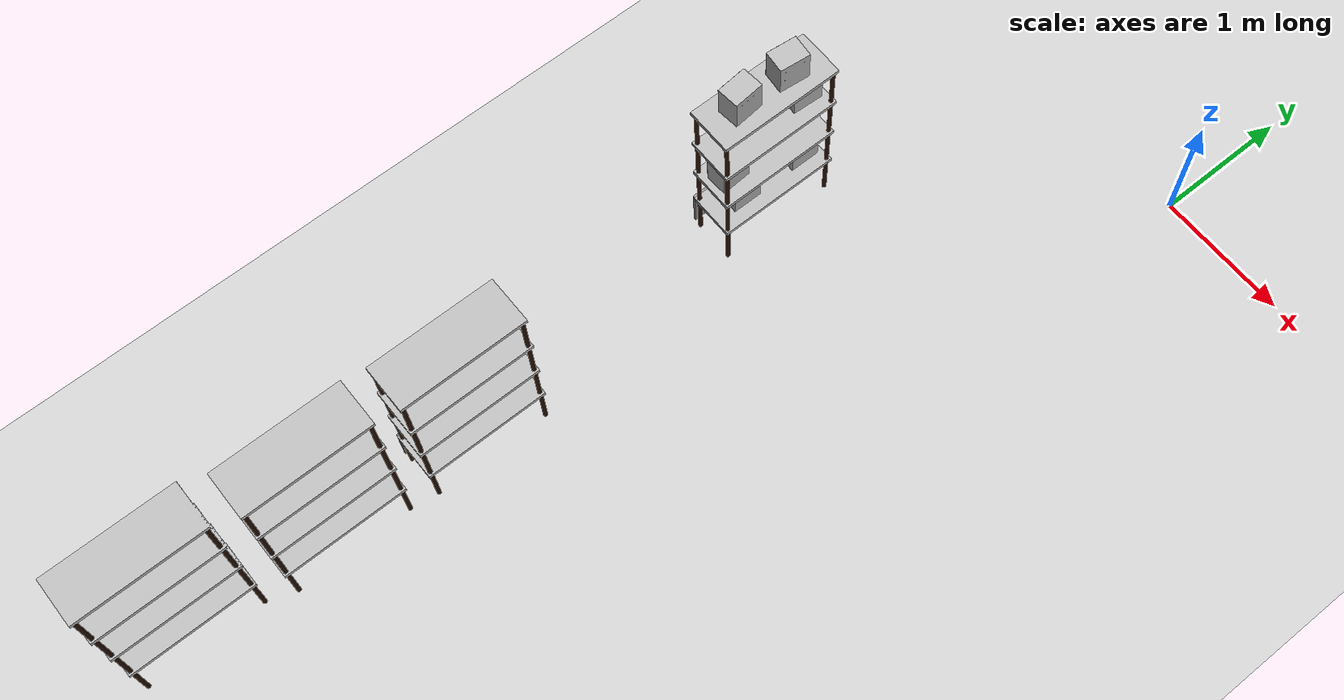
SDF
<sdf version="1.7">
 <world name="default">
  <model name="ground_plane">
   <static>1</static>
   <link name="link">
    <collision name="collision">
     <geometry><plane><normal>0 0 1</normal><size>100 100</size></plane></geometry>
     <surface><friction><ode><mu>100</mu><mu2>50</mu2></ode></friction></surface>
    </collision>
    <visual name="visual">
     <cast_shadows>0</cast_shadows>
     <geometry><plane><normal>0 0 1</normal><size>100 100</size></plane></geometry>
     <material>
      <script><uri>file://media/materials/scripts/gazebo.material</uri><name>Gazebo/Grey</name></script>
     </material>
    </visual>
   </link>
  </model>
  <model name="rack">
   <link name="link">
    <inertial>
     <mass>0.1</mass>
     <inertia><ixx>0.01857</ixx><ixy>0</ixy><ixz>0</ixz><iyy>0.015598</iyy><iyz>0</iyz><izz>0.00305</izz></inertia>
    </inertial>
    <visual name="visual1">
     <cast_shadows>0</cast_shadows>
     <geometry><mesh><uri>model://rack/meshes/rack.dae</uri></mesh></geometry>
     <material>
      <shader type="pixel"><normal_map>__default__</normal_map></shader>
      <emissive>0 0 0 1</emissive>
     </material>
    </visual>
    <visual name="visual_2">
     <cast_shadows>0</cast_shadows>
     <geometry><box><size>0.02 0.9 0.31</size></box></geometry>
     <material>
      <lighting>1</lighting>
      <script><uri>file://media/materials/scripts/gazebo.material</uri><name>Gazebo/Grey</name></script>
      <shader type="pixel"><normal_map>__default__</normal_map></shader>
      <ambient>0.3 0.3 0.3 1</ambient>
      <diffuse>0.7 0.7 0.7 1</diffuse>
      <specular>0.01 0.01 0.01 1</specular>
      <emissive>0 0 0 1</emissive>
     </material>
     <pose>-0.185 0 0.22 0 -0 0</pose>
    </visual>
    <collision name="collision_7">
     <pose>0 0 0.36 0 1.57 1.57</pose>
     <geometry><box><size>0.05 0.35 0.91</size></box></geometry>
     <surface>
      <friction>
       <ode><mu>1</mu><mu2>1</mu2><fdir1>0 0 0</fdir1><slip1>0</slip1><slip2>0</slip2></ode>
       <torsional>
        <coefficient>1</coefficient>
        <patch_radius>0</patch_radius>
        <surface_radius>0</surface_radius>
        <use_patch_radius>1</use_patch_radius>
        <ode><slip>0</slip></ode>
       </torsional>
      </friction>
      <bounce><restitution_coefficient>0</restitution_coefficient><threshold>1e+06</threshold></bounce>
      <contact>
       <collide_without_contact>0</collide_without_contact>
       <collide_without_contact_bitmask>1</collide_without_contact_bitmask>
       <collide_bitmask>1</collide_bitmask>
       <ode>
        <soft_cfm>0</soft_cfm>
        <soft_erp>0.2</soft_erp>
        <kp>1e+15</kp>
        <kd>1e+13</kd>
        <max_vel>0.01</max_vel>
        <min_depth>0</min_depth>
       </ode>
       <bullet>
        <split_impulse>1</split_impulse>
        <split_impulse_penetration_threshold>-0.01</split_impulse_penetration_threshold>
        <soft_cfm>0</soft_cfm>
        <soft_erp>0.2</soft_erp>
        <kp>1e+13</kp>
        <kd>1</kd>
       </bullet>
      </contact>
     </surface>
    </collision>
    <collision name="collision_6">
     <pose>0 0 0.725 0 1.57 1.57</pose>
     <geometry><box><size>0.05 0.35 0.91</size></box></geometry>
     <surface>
      <friction>
       <ode><mu>1</mu><mu2>1</mu2><fdir1>0 0 0</fdir1><slip1>0</slip1><slip2>0</slip2></ode>
       <torsional>
        <coefficient>1</coefficient>
        <patch_radius>0</patch_radius>
        <surface_radius>0</surface_radius>
        <use_patch_radius>1</use_patch_radius>
        <ode><slip>0</slip></ode>
       </torsional>
      </friction>
      <bounce><restitution_coefficient>0</restitution_coefficient><threshold>1e+06</threshold></bounce>
      <contact>
       <collide_without_contact>0</collide_without_contact>
       <collide_without_contact_bitmask>1</collide_without_contact_bitmask>
       <collide_bitmask>1</collide_bitmask>
       <ode>
        <soft_cfm>0</soft_cfm>
        <soft_erp>0.2</soft_erp>
        <kp>1e+15</kp>
        <kd>1e+13</kd>
        <max_vel>0.01</max_vel>
        <min_depth>0</min_depth>
       </ode>
       <bullet>
        <split_impulse>1</split_impulse>
        <split_impulse_penetration_threshold>-0.01</split_impulse_penetration_threshold>
        <soft_cfm>0</soft_cfm>
        <soft_erp>0.2</soft_erp>
        <kp>1e+13</kp>
        <kd>1</kd>
       </bullet>
      </contact>
     </surface>
    </collision>
    <collision name="collision_5">
     <pose>0 0 1.09 0 1.57 1.57</pose>
     <geometry><box><size>0.05 0.35 0.91</size></box></geometry>
     <surface>
      <friction>
       <ode><mu>1</mu><mu2>1</mu2><fdir1>0 0 0</fdir1><slip1>0</slip1><slip2>0</slip2></ode>
       <torsional>
        <coefficient>1</coefficient>
        <patch_radius>0</patch_radius>
        <surface_radius>0</surface_radius>
        <use_patch_radius>1</use_patch_radius>
        <ode><slip>0</slip></ode>
       </torsional>
      </friction>
      <bounce><restitution_coefficient>0</restitution_coefficient><threshold>1e+06</threshold></bounce>
      <contact>
       <collide_without_contact>0</collide_without_contact>
       <collide_without_contact_bitmask>1</collide_without_contact_bitmask>
       <collide_bitmask>1</collide_bitmask>
       <ode>
        <soft_cfm>0</soft_cfm>
        <soft_erp>0.2</soft_erp>
        <kp>1e+15</kp>
        <kd>1e+13</kd>
        <max_vel>0.01</max_vel>
        <min_depth>0</min_depth>
       </ode>
       <bullet>
        <split_impulse>1</split_impulse>
        <split_impulse_penetration_threshold>-0.01</split_impulse_penetration_threshold>
        <soft_cfm>0</soft_cfm>
        <soft_erp>0.2</soft_erp>
        <kp>1e+13</kp>
        <kd>1</kd>
       </bullet>
      </contact>
     </surface>
    </collision>
    <collision name="collision_3">
     <pose>0 0 1.455 0 1.57 1.57</pose>
     <geometry><box><size>0.05 0.35 0.91</size></box></geometry>
     <surface>
      <friction>
       <ode><mu>1</mu><mu2>1</mu2><fdir1>0 0 0</fdir1><slip1>0</slip1><slip2>0</slip2></ode>
       <torsional>
        <coefficient>1</coefficient>
        <patch_radius>0</patch_radius>
        <surface_radius>0</surface_radius>
        <use_patch_radius>1</use_patch_radius>
        <ode><slip>0</slip></ode>
       </torsional>
      </friction>
      <bounce><restitution_coefficient>0</restitution_coefficient><threshold>1e+06</threshold></bounce>
      <contact>
       <collide_without_contact>0</collide_without_contact>
       <collide_without_contact_bitmask>1</collide_without_contact_bitmask>
       <collide_bitmask>1</collide_bitmask>
       <ode>
        <soft_cfm>0</soft_cfm>
        <soft_erp>0.2</soft_erp>
        <kp>1e+15</kp>
        <kd>1e+13</kd>
        <max_vel>0.01</max_vel>
        <min_depth>0</min_depth>
       </ode>
       <bullet>
        <split_impulse>1</split_impulse>
        <split_impulse_penetration_threshold>-0.01</split_impulse_penetration_threshold>
        <soft_cfm>0</soft_cfm>
        <soft_erp>0.2</soft_erp>
        <kp>1e+13</kp>
        <kd>1</kd>
       </bullet>
      </contact>
     </surface>
    </collision>
    <collision name="collision_1">
     <pose>0 0.43 0.73 0 -0 1.57</pose>
     <geometry><box><size>0.05 0.36 1.46</size></box></geometry>
     <surface>
      <friction>
       <ode><mu>1</mu><mu2>1</mu2><fdir1>0 0 0</fdir1><slip1>0</slip1><slip2>0</slip2></ode>
       <torsional>
        <coefficient>1</coefficient>
        <patch_radius>0</patch_radius>
        <surface_radius>0</surface_radius>
        <use_patch_radius>1</use_patch_radius>
        <ode><slip>0</slip></ode>
       </torsional>
      </friction>
      <bounce><restitution_coefficient>0</restitution_coefficient><threshold>1e+06</threshold></bounce>
      <contact>
       <collide_without_contact>0</collide_without_contact>
       <collide_without_contact_bitmask>1</collide_without_contact_bitmask>
       <collide_bitmask>1</collide_bitmask>
       <ode>
        <soft_cfm>0</soft_cfm>
        <soft_erp>0.2</soft_erp>
        <kp>1e+15</kp>
        <kd>1e+13</kd>
        <max_vel>0.01</max_vel>
        <min_depth>0</min_depth>
       </ode>
       <bullet>
        <split_impulse>1</split_impulse>
        <split_impulse_penetration_threshold>-0.01</split_impulse_penetration_threshold>
        <soft_cfm>0</soft_cfm>
        <soft_erp>0.2</soft_erp>
        <kp>1e+13</kp>
        <kd>1</kd>
       </bullet>
      </contact>
     </surface>
    </collision>
    <collision name="collision_2">
     <pose>0 -0.43 0.73 0 -0 1.57</pose>
     <geometry><box><size>0.05 0.36 1.46</size></box></geometry>
     <surface>
      <friction>
       <ode><mu>1</mu><mu2>1</mu2><fdir1>0 0 0</fdir1><slip1>0</slip1><slip2>0</slip2></ode>
       <torsional>
        <coefficient>1</coefficient>
        <patch_radius>0</patch_radius>
        <surface_radius>0</surface_radius>
        <use_patch_radius>1</use_patch_radius>
        <ode><slip>0</slip></ode>
       </torsional>
      </friction>
      <bounce><restitution_coefficient>0</restitution_coefficient><threshold>1e+06</threshold></bounce>
      <contact>
       <collide_without_contact>0</collide_without_contact>
       <collide_without_contact_bitmask>1</collide_without_contact_bitmask>
       <collide_bitmask>1</collide_bitmask>
       <ode>
        <soft_cfm>0</soft_cfm>
        <soft_erp>0.2</soft_erp>
        <kp>1e+15</kp>
        <kd>1e+13</kd>
        <max_vel>0.01</max_vel>
        <min_depth>0</min_depth>
       </ode>
       <bullet>
        <split_impulse>1</split_impulse>
        <split_impulse_penetration_threshold>-0.01</split_impulse_penetration_threshold>
        <soft_cfm>0</soft_cfm>
        <soft_erp>0.2</soft_erp>
        <kp>1e+13</kp>
        <kd>1</kd>
       </bullet>
      </contact>
     </surface>
    </collision>
    <collision name="collision">
     <pose>-0.185 0 0.22 0 -0 0</pose>
     <geometry><box><size>0.02 0.9 0.31</size></box></geometry>
     <surface>
      <friction>
       <ode><mu>1</mu><mu2>1</mu2><fdir1>0 0 0</fdir1><slip1>0</slip1><slip2>0</slip2></ode>
       <torsional>
        <coefficient>1</coefficient>
        <patch_radius>0</patch_radius>
        <surface_radius>0</surface_radius>
        <use_patch_radius>1</use_patch_radius>
        <ode><slip>0</slip></ode>
       </torsional>
      </friction>
      <bounce><restitution_coefficient>0</restitution_coefficient><threshold>1e+06</threshold></bounce>
      <contact>
       <collide_without_contact>0</collide_without_contact>
       <collide_without_contact_bitmask>1</collide_without_contact_bitmask>
       <collide_bitmask>1</collide_bitmask>
       <ode>
        <soft_cfm>0</soft_cfm>
        <soft_erp>0.2</soft_erp>
        <kp>1e+15</kp>
        <kd>1e+13</kd>
        <max_vel>0.01</max_vel>
        <min_depth>0</min_depth>
       </ode>
       <bullet>
        <split_impulse>1</split_impulse>
        <split_impulse_penetration_threshold>-0.01</split_impulse_penetration_threshold>
        <soft_cfm>0</soft_cfm>
        <soft_erp>0.2</soft_erp>
        <kp>1e+13</kp>
        <kd>1</kd>
       </bullet>
      </contact>
     </surface>
    </collision>
   </link>
   <static>0</static>
   <pose>-1.73706 -6.85642 -0 0 -0 0</pose>
  </model>
  <model name="rack_0">
   <link name="link">
    <inertial>
     <mass>0.1</mass>
     <inertia><ixx>0.01857</ixx><ixy>0</ixy><ixz>0</ixz><iyy>0.015598</iyy><iyz>0</iyz><izz>0.00305</izz></inertia>
    </inertial>
    <visual name="visual1">
     <cast_shadows>0</cast_shadows>
     <geometry><mesh><uri>model://rack/meshes/rack.dae</uri></mesh></geometry>
     <material>
      <shader type="pixel"><normal_map>__default__</normal_map></shader>
      <emissive>0 0 0 1</emissive>
     </material>
    </visual>
    <visual name="visual_2">
     <cast_shadows>0</cast_shadows>
     <geometry><box><size>0.02 0.9 0.31</size></box></geometry>
     <material>
      <lighting>1</lighting>
      <script><uri>file://media/materials/scripts/gazebo.material</uri><name>Gazebo/Grey</name></script>
      <shader type="pixel"><normal_map>__default__</normal_map></shader>
      <ambient>0.3 0.3 0.3 1</ambient>
      <diffuse>0.7 0.7 0.7 1</diffuse>
      <specular>0.01 0.01 0.01 1</specular>
      <emissive>0 0 0 1</emissive>
     </material>
     <pose>-0.185 0 0.22 0 -0 0</pose>
    </visual>
    <collision name="collision_7">
     <pose>0 0 0.36 0 1.57 1.57</pose>
     <geometry><box><size>0.05 0.35 0.91</size></box></geometry>
     <surface>
      <friction>
       <ode><mu>1</mu><mu2>1</mu2><fdir1>0 0 0</fdir1><slip1>0</slip1><slip2>0</slip2></ode>
       <torsional>
        <coefficient>1</coefficient>
        <patch_radius>0</patch_radius>
        <surface_radius>0</surface_radius>
        <use_patch_radius>1</use_patch_radius>
        <ode><slip>0</slip></ode>
       </torsional>
      </friction>
      <bounce><restitution_coefficient>0</restitution_coefficient><threshold>1e+06</threshold></bounce>
      <contact>
       <collide_without_contact>0</collide_without_contact>
       <collide_without_contact_bitmask>1</collide_without_contact_bitmask>
       <collide_bitmask>1</collide_bitmask>
       <ode>
        <soft_cfm>0</soft_cfm>
        <soft_erp>0.2</soft_erp>
        <kp>1e+15</kp>
        <kd>1e+13</kd>
        <max_vel>0.01</max_vel>
        <min_depth>0</min_depth>
       </ode>
       <bullet>
        <split_impulse>1</split_impulse>
        <split_impulse_penetration_threshold>-0.01</split_impulse_penetration_threshold>
        <soft_cfm>0</soft_cfm>
        <soft_erp>0.2</soft_erp>
        <kp>1e+13</kp>
        <kd>1</kd>
       </bullet>
      </contact>
     </surface>
    </collision>
    <collision name="collision_6">
     <pose>0 0 0.725 0 1.57 1.57</pose>
     <geometry><box><size>0.05 0.35 0.91</size></box></geometry>
     <surface>
      <friction>
       <ode><mu>1</mu><mu2>1</mu2><fdir1>0 0 0</fdir1><slip1>0</slip1><slip2>0</slip2></ode>
       <torsional>
        <coefficient>1</coefficient>
        <patch_radius>0</patch_radius>
        <surface_radius>0</surface_radius>
        <use_patch_radius>1</use_patch_radius>
        <ode><slip>0</slip></ode>
       </torsional>
      </friction>
      <bounce><restitution_coefficient>0</restitution_coefficient><threshold>1e+06</threshold></bounce>
      <contact>
       <collide_without_contact>0</collide_without_contact>
       <collide_without_contact_bitmask>1</collide_without_contact_bitmask>
       <collide_bitmask>1</collide_bitmask>
       <ode>
        <soft_cfm>0</soft_cfm>
        <soft_erp>0.2</soft_erp>
        <kp>1e+15</kp>
        <kd>1e+13</kd>
        <max_vel>0.01</max_vel>
        <min_depth>0</min_depth>
       </ode>
       <bullet>
        <split_impulse>1</split_impulse>
        <split_impulse_penetration_threshold>-0.01</split_impulse_penetration_threshold>
        <soft_cfm>0</soft_cfm>
        <soft_erp>0.2</soft_erp>
        <kp>1e+13</kp>
        <kd>1</kd>
       </bullet>
      </contact>
     </surface>
    </collision>
    <collision name="collision_5">
     <pose>0 0 1.09 0 1.57 1.57</pose>
     <geometry><box><size>0.05 0.35 0.91</size></box></geometry>
     <surface>
      <friction>
       <ode><mu>1</mu><mu2>1</mu2><fdir1>0 0 0</fdir1><slip1>0</slip1><slip2>0</slip2></ode>
       <torsional>
        <coefficient>1</coefficient>
        <patch_radius>0</patch_radius>
        <surface_radius>0</surface_radius>
        <use_patch_radius>1</use_patch_radius>
        <ode><slip>0</slip></ode>
       </torsional>
      </friction>
      <bounce><restitution_coefficient>0</restitution_coefficient><threshold>1e+06</threshold></bounce>
      <contact>
       <collide_without_contact>0</collide_without_contact>
       <collide_without_contact_bitmask>1</collide_without_contact_bitmask>
       <collide_bitmask>1</collide_bitmask>
       <ode>
        <soft_cfm>0</soft_cfm>
        <soft_erp>0.2</soft_erp>
        <kp>1e+15</kp>
        <kd>1e+13</kd>
        <max_vel>0.01</max_vel>
        <min_depth>0</min_depth>
       </ode>
       <bullet>
        <split_impulse>1</split_impulse>
        <split_impulse_penetration_threshold>-0.01</split_impulse_penetration_threshold>
        <soft_cfm>0</soft_cfm>
        <soft_erp>0.2</soft_erp>
        <kp>1e+13</kp>
        <kd>1</kd>
       </bullet>
      </contact>
     </surface>
    </collision>
    <collision name="collision_3">
     <pose>0 0 1.455 0 1.57 1.57</pose>
     <geometry><box><size>0.05 0.35 0.91</size></box></geometry>
     <surface>
      <friction>
       <ode><mu>1</mu><mu2>1</mu2><fdir1>0 0 0</fdir1><slip1>0</slip1><slip2>0</slip2></ode>
       <torsional>
        <coefficient>1</coefficient>
        <patch_radius>0</patch_radius>
        <surface_radius>0</surface_radius>
        <use_patch_radius>1</use_patch_radius>
        <ode><slip>0</slip></ode>
       </torsional>
      </friction>
      <bounce><restitution_coefficient>0</restitution_coefficient><threshold>1e+06</threshold></bounce>
      <contact>
       <collide_without_contact>0</collide_without_contact>
       <collide_without_contact_bitmask>1</collide_without_contact_bitmask>
       <collide_bitmask>1</collide_bitmask>
       <ode>
        <soft_cfm>0</soft_cfm>
        <soft_erp>0.2</soft_erp>
        <kp>1e+15</kp>
        <kd>1e+13</kd>
        <max_vel>0.01</max_vel>
        <min_depth>0</min_depth>
       </ode>
       <bullet>
        <split_impulse>1</split_impulse>
        <split_impulse_penetration_threshold>-0.01</split_impulse_penetration_threshold>
        <soft_cfm>0</soft_cfm>
        <soft_erp>0.2</soft_erp>
        <kp>1e+13</kp>
        <kd>1</kd>
       </bullet>
      </contact>
     </surface>
    </collision>
    <collision name="collision_1">
     <pose>0 0.43 0.73 0 -0 1.57</pose>
     <geometry><box><size>0.05 0.36 1.46</size></box></geometry>
     <surface>
      <friction>
       <ode><mu>1</mu><mu2>1</mu2><fdir1>0 0 0</fdir1><slip1>0</slip1><slip2>0</slip2></ode>
       <torsional>
        <coefficient>1</coefficient>
        <patch_radius>0</patch_radius>
        <surface_radius>0</surface_radius>
        <use_patch_radius>1</use_patch_radius>
        <ode><slip>0</slip></ode>
       </torsional>
      </friction>
      <bounce><restitution_coefficient>0</restitution_coefficient><threshold>1e+06</threshold></bounce>
      <contact>
       <collide_without_contact>0</collide_without_contact>
       <collide_without_contact_bitmask>1</collide_without_contact_bitmask>
       <collide_bitmask>1</collide_bitmask>
       <ode>
        <soft_cfm>0</soft_cfm>
        <soft_erp>0.2</soft_erp>
        <kp>1e+15</kp>
        <kd>1e+13</kd>
        <max_vel>0.01</max_vel>
        <min_depth>0</min_depth>
       </ode>
       <bullet>
        <split_impulse>1</split_impulse>
        <split_impulse_penetration_threshold>-0.01</split_impulse_penetration_threshold>
        <soft_cfm>0</soft_cfm>
        <soft_erp>0.2</soft_erp>
        <kp>1e+13</kp>
        <kd>1</kd>
       </bullet>
      </contact>
     </surface>
    </collision>
    <collision name="collision_2">
     <pose>0 -0.43 0.73 0 -0 1.57</pose>
     <geometry><box><size>0.05 0.36 1.46</size></box></geometry>
     <surface>
      <friction>
       <ode><mu>1</mu><mu2>1</mu2><fdir1>0 0 0</fdir1><slip1>0</slip1><slip2>0</slip2></ode>
       <torsional>
        <coefficient>1</coefficient>
        <patch_radius>0</patch_radius>
        <surface_radius>0</surface_radius>
        <use_patch_radius>1</use_patch_radius>
        <ode><slip>0</slip></ode>
       </torsional>
      </friction>
      <bounce><restitution_coefficient>0</restitution_coefficient><threshold>1e+06</threshold></bounce>
      <contact>
       <collide_without_contact>0</collide_without_contact>
       <collide_without_contact_bitmask>1</collide_without_contact_bitmask>
       <collide_bitmask>1</collide_bitmask>
       <ode>
        <soft_cfm>0</soft_cfm>
        <soft_erp>0.2</soft_erp>
        <kp>1e+15</kp>
        <kd>1e+13</kd>
        <max_vel>0.01</max_vel>
        <min_depth>0</min_depth>
       </ode>
       <bullet>
        <split_impulse>1</split_impulse>
        <split_impulse_penetration_threshold>-0.01</split_impulse_penetration_threshold>
        <soft_cfm>0</soft_cfm>
        <soft_erp>0.2</soft_erp>
        <kp>1e+13</kp>
        <kd>1</kd>
       </bullet>
      </contact>
     </surface>
    </collision>
    <collision name="collision">
     <pose>-0.185 0 0.22 0 -0 0</pose>
     <geometry><box><size>0.02 0.9 0.31</size></box></geometry>
     <surface>
      <friction>
       <ode><mu>1</mu><mu2>1</mu2><fdir1>0 0 0</fdir1><slip1>0</slip1><slip2>0</slip2></ode>
       <torsional>
        <coefficient>1</coefficient>
        <patch_radius>0</patch_radius>
        <surface_radius>0</surface_radius>
        <use_patch_radius>1</use_patch_radius>
        <ode><slip>0</slip></ode>
       </torsional>
      </friction>
      <bounce><restitution_coefficient>0</restitution_coefficient><threshold>1e+06</threshold></bounce>
      <contact>
       <collide_without_contact>0</collide_without_contact>
       <collide_without_contact_bitmask>1</collide_without_contact_bitmask>
       <collide_bitmask>1</collide_bitmask>
       <ode>
        <soft_cfm>0</soft_cfm>
        <soft_erp>0.2</soft_erp>
        <kp>1e+15</kp>
        <kd>1e+13</kd>
        <max_vel>0.01</max_vel>
        <min_depth>0</min_depth>
       </ode>
       <bullet>
        <split_impulse>1</split_impulse>
        <split_impulse_penetration_threshold>-0.01</split_impulse_penetration_threshold>
        <soft_cfm>0</soft_cfm>
        <soft_erp>0.2</soft_erp>
        <kp>1e+13</kp>
        <kd>1</kd>
       </bullet>
      </contact>
     </surface>
    </collision>
   </link>
   <static>0</static>
   <pose>-1.66529 -5.78704 -0 0 -0 0</pose>
  </model>
  <model name="rack_1">
   <link name="link">
    <inertial>
     <mass>0.1</mass>
     <inertia><ixx>0.01857</ixx><ixy>0</ixy><ixz>0</ixz><iyy>0.015598</iyy><iyz>0</iyz><izz>0.00305</izz></inertia>
    </inertial>
    <visual name="visual1">
     <cast_shadows>0</cast_shadows>
     <geometry><mesh><uri>model://rack/meshes/rack.dae</uri></mesh></geometry>
     <material>
      <shader type="pixel"><normal_map>__default__</normal_map></shader>
      <emissive>0 0 0 1</emissive>
     </material>
    </visual>
    <visual name="visual_2">
     <cast_shadows>0</cast_shadows>
     <geometry><box><size>0.02 0.9 0.31</size></box></geometry>
     <material>
      <lighting>1</lighting>
      <script><uri>file://media/materials/scripts/gazebo.material</uri><name>Gazebo/Grey</name></script>
      <shader type="pixel"><normal_map>__default__</normal_map></shader>
      <ambient>0.3 0.3 0.3 1</ambient>
      <diffuse>0.7 0.7 0.7 1</diffuse>
      <specular>0.01 0.01 0.01 1</specular>
      <emissive>0 0 0 1</emissive>
     </material>
     <pose>-0.185 0 0.22 0 -0 0</pose>
    </visual>
    <collision name="collision_7">
     <pose>0 0 0.36 0 1.57 1.57</pose>
     <geometry><box><size>0.05 0.35 0.91</size></box></geometry>
     <surface>
      <friction>
       <ode><mu>1</mu><mu2>1</mu2><fdir1>0 0 0</fdir1><slip1>0</slip1><slip2>0</slip2></ode>
       <torsional>
        <coefficient>1</coefficient>
        <patch_radius>0</patch_radius>
        <surface_radius>0</surface_radius>
        <use_patch_radius>1</use_patch_radius>
        <ode><slip>0</slip></ode>
       </torsional>
      </friction>
      <bounce><restitution_coefficient>0</restitution_coefficient><threshold>1e+06</threshold></bounce>
      <contact>
       <collide_without_contact>0</collide_without_contact>
       <collide_without_contact_bitmask>1</collide_without_contact_bitmask>
       <collide_bitmask>1</collide_bitmask>
       <ode>
        <soft_cfm>0</soft_cfm>
        <soft_erp>0.2</soft_erp>
        <kp>1e+15</kp>
        <kd>1e+13</kd>
        <max_vel>0.01</max_vel>
        <min_depth>0</min_depth>
       </ode>
       <bullet>
        <split_impulse>1</split_impulse>
        <split_impulse_penetration_threshold>-0.01</split_impulse_penetration_threshold>
        <soft_cfm>0</soft_cfm>
        <soft_erp>0.2</soft_erp>
        <kp>1e+13</kp>
        <kd>1</kd>
       </bullet>
      </contact>
     </surface>
    </collision>
    <collision name="collision_6">
     <pose>0 0 0.725 0 1.57 1.57</pose>
     <geometry><box><size>0.05 0.35 0.91</size></box></geometry>
     <surface>
      <friction>
       <ode><mu>1</mu><mu2>1</mu2><fdir1>0 0 0</fdir1><slip1>0</slip1><slip2>0</slip2></ode>
       <torsional>
        <coefficient>1</coefficient>
        <patch_radius>0</patch_radius>
        <surface_radius>0</surface_radius>
        <use_patch_radius>1</use_patch_radius>
        <ode><slip>0</slip></ode>
       </torsional>
      </friction>
      <bounce><restitution_coefficient>0</restitution_coefficient><threshold>1e+06</threshold></bounce>
      <contact>
       <collide_without_contact>0</collide_without_contact>
       <collide_without_contact_bitmask>1</collide_without_contact_bitmask>
       <collide_bitmask>1</collide_bitmask>
       <ode>
        <soft_cfm>0</soft_cfm>
        <soft_erp>0.2</soft_erp>
        <kp>1e+15</kp>
        <kd>1e+13</kd>
        <max_vel>0.01</max_vel>
        <min_depth>0</min_depth>
       </ode>
       <bullet>
        <split_impulse>1</split_impulse>
        <split_impulse_penetration_threshold>-0.01</split_impulse_penetration_threshold>
        <soft_cfm>0</soft_cfm>
        <soft_erp>0.2</soft_erp>
        <kp>1e+13</kp>
        <kd>1</kd>
       </bullet>
      </contact>
     </surface>
    </collision>
    <collision name="collision_5">
     <pose>0 0 1.09 0 1.57 1.57</pose>
     <geometry><box><size>0.05 0.35 0.91</size></box></geometry>
     <surface>
      <friction>
       <ode><mu>1</mu><mu2>1</mu2><fdir1>0 0 0</fdir1><slip1>0</slip1><slip2>0</slip2></ode>
       <torsional>
        <coefficient>1</coefficient>
        <patch_radius>0</patch_radius>
        <surface_radius>0</surface_radius>
        <use_patch_radius>1</use_patch_radius>
        <ode><slip>0</slip></ode>
       </torsional>
      </friction>
      <bounce><restitution_coefficient>0</restitution_coefficient><threshold>1e+06</threshold></bounce>
      <contact>
       <collide_without_contact>0</collide_without_contact>
       <collide_without_contact_bitmask>1</collide_without_contact_bitmask>
       <collide_bitmask>1</collide_bitmask>
       <ode>
        <soft_cfm>0</soft_cfm>
        <soft_erp>0.2</soft_erp>
        <kp>1e+15</kp>
        <kd>1e+13</kd>
        <max_vel>0.01</max_vel>
        <min_depth>0</min_depth>
       </ode>
       <bullet>
        <split_impulse>1</split_impulse>
        <split_impulse_penetration_threshold>-0.01</split_impulse_penetration_threshold>
        <soft_cfm>0</soft_cfm>
        <soft_erp>0.2</soft_erp>
        <kp>1e+13</kp>
        <kd>1</kd>
       </bullet>
      </contact>
     </surface>
    </collision>
    <collision name="collision_3">
     <pose>0 0 1.455 0 1.57 1.57</pose>
     <geometry><box><size>0.05 0.35 0.91</size></box></geometry>
     <surface>
      <friction>
       <ode><mu>1</mu><mu2>1</mu2><fdir1>0 0 0</fdir1><slip1>0</slip1><slip2>0</slip2></ode>
       <torsional>
        <coefficient>1</coefficient>
        <patch_radius>0</patch_radius>
        <surface_radius>0</surface_radius>
        <use_patch_radius>1</use_patch_radius>
        <ode><slip>0</slip></ode>
       </torsional>
      </friction>
      <bounce><restitution_coefficient>0</restitution_coefficient><threshold>1e+06</threshold></bounce>
      <contact>
       <collide_without_contact>0</collide_without_contact>
       <collide_without_contact_bitmask>1</collide_without_contact_bitmask>
       <collide_bitmask>1</collide_bitmask>
       <ode>
        <soft_cfm>0</soft_cfm>
        <soft_erp>0.2</soft_erp>
        <kp>1e+15</kp>
        <kd>1e+13</kd>
        <max_vel>0.01</max_vel>
        <min_depth>0</min_depth>
       </ode>
       <bullet>
        <split_impulse>1</split_impulse>
        <split_impulse_penetration_threshold>-0.01</split_impulse_penetration_threshold>
        <soft_cfm>0</soft_cfm>
        <soft_erp>0.2</soft_erp>
        <kp>1e+13</kp>
        <kd>1</kd>
       </bullet>
      </contact>
     </surface>
    </collision>
    <collision name="collision_1">
     <pose>0 0.43 0.73 0 -0 1.57</pose>
     <geometry><box><size>0.05 0.36 1.46</size></box></geometry>
     <surface>
      <friction>
       <ode><mu>1</mu><mu2>1</mu2><fdir1>0 0 0</fdir1><slip1>0</slip1><slip2>0</slip2></ode>
       <torsional>
        <coefficient>1</coefficient>
        <patch_radius>0</patch_radius>
        <surface_radius>0</surface_radius>
        <use_patch_radius>1</use_patch_radius>
        <ode><slip>0</slip></ode>
       </torsional>
      </friction>
      <bounce><restitution_coefficient>0</restitution_coefficient><threshold>1e+06</threshold></bounce>
      <contact>
       <collide_without_contact>0</collide_without_contact>
       <collide_without_contact_bitmask>1</collide_without_contact_bitmask>
       <collide_bitmask>1</collide_bitmask>
       <ode>
        <soft_cfm>0</soft_cfm>
        <soft_erp>0.2</soft_erp>
        <kp>1e+15</kp>
        <kd>1e+13</kd>
        <max_vel>0.01</max_vel>
        <min_depth>0</min_depth>
       </ode>
       <bullet>
        <split_impulse>1</split_impulse>
        <split_impulse_penetration_threshold>-0.01</split_impulse_penetration_threshold>
        <soft_cfm>0</soft_cfm>
        <soft_erp>0.2</soft_erp>
        <kp>1e+13</kp>
        <kd>1</kd>
       </bullet>
      </contact>
     </surface>
    </collision>
    <collision name="collision_2">
     <pose>0 -0.43 0.73 0 -0 1.57</pose>
     <geometry><box><size>0.05 0.36 1.46</size></box></geometry>
     <surface>
      <friction>
       <ode><mu>1</mu><mu2>1</mu2><fdir1>0 0 0</fdir1><slip1>0</slip1><slip2>0</slip2></ode>
       <torsional>
        <coefficient>1</coefficient>
        <patch_radius>0</patch_radius>
        <surface_radius>0</surface_radius>
        <use_patch_radius>1</use_patch_radius>
        <ode><slip>0</slip></ode>
       </torsional>
      </friction>
      <bounce><restitution_coefficient>0</restitution_coefficient><threshold>1e+06</threshold></bounce>
      <contact>
       <collide_without_contact>0</collide_without_contact>
       <collide_without_contact_bitmask>1</collide_without_contact_bitmask>
       <collide_bitmask>1</collide_bitmask>
       <ode>
        <soft_cfm>0</soft_cfm>
        <soft_erp>0.2</soft_erp>
        <kp>1e+15</kp>
        <kd>1e+13</kd>
        <max_vel>0.01</max_vel>
        <min_depth>0</min_depth>
       </ode>
       <bullet>
        <split_impulse>1</split_impulse>
        <split_impulse_penetration_threshold>-0.01</split_impulse_penetration_threshold>
        <soft_cfm>0</soft_cfm>
        <soft_erp>0.2</soft_erp>
        <kp>1e+13</kp>
        <kd>1</kd>
       </bullet>
      </contact>
     </surface>
    </collision>
    <collision name="collision">
     <pose>-0.185 0 0.22 0 -0 0</pose>
     <geometry><box><size>0.02 0.9 0.31</size></box></geometry>
     <surface>
      <friction>
       <ode><mu>1</mu><mu2>1</mu2><fdir1>0 0 0</fdir1><slip1>0</slip1><slip2>0</slip2></ode>
       <torsional>
        <coefficient>1</coefficient>
        <patch_radius>0</patch_radius>
        <surface_radius>0</surface_radius>
        <use_patch_radius>1</use_patch_radius>
        <ode><slip>0</slip></ode>
       </torsional>
      </friction>
      <bounce><restitution_coefficient>0</restitution_coefficient><threshold>1e+06</threshold></bounce>
      <contact>
       <collide_without_contact>0</collide_without_contact>
       <collide_without_contact_bitmask>1</collide_without_contact_bitmask>
       <collide_bitmask>1</collide_bitmask>
       <ode>
        <soft_cfm>0</soft_cfm>
        <soft_erp>0.2</soft_erp>
        <kp>1e+15</kp>
        <kd>1e+13</kd>
        <max_vel>0.01</max_vel>
        <min_depth>0</min_depth>
       </ode>
       <bullet>
        <split_impulse>1</split_impulse>
        <split_impulse_penetration_threshold>-0.01</split_impulse_penetration_threshold>
        <soft_cfm>0</soft_cfm>
        <soft_erp>0.2</soft_erp>
        <kp>1e+13</kp>
        <kd>1</kd>
       </bullet>
      </contact>
     </surface>
    </collision>
   </link>
   <static>0</static>
   <pose>-1.63698 -4.72019 -0 0 -0 0</pose>
  </model>
  <model name="rack_with_box_2">
   <link name="link">
    <inertial>
     <mass>1.87</mass>
     <inertia><ixx>0.01857</ixx><ixy>0</ixy><ixz>0</ixz><iyy>0.015598</iyy><iyz>0</iyz><izz>0.00305</izz></inertia>
    </inertial>
    <visual name="visual1">
     <cast_shadows>0</cast_shadows>
     <geometry><mesh><uri>model://rack_with_box/meshes/rack.dae</uri></mesh></geometry>
     <material>
      <shader type="pixel"><normal_map>__default__</normal_map></shader>
      <emissive>0 0 0 1</emissive>
     </material>
    </visual>
    <visual name="visual_2">
     <cast_shadows>0</cast_shadows>
     <geometry><box><size>0.02 0.9 0.31</size></box></geometry>
     <material>
      <lighting>1</lighting>
      <script><uri>file://media/materials/scripts/gazebo.material</uri><name>Gazebo/Grey</name></script>
      <shader type="pixel"><normal_map>__default__</normal_map></shader>
      <ambient>0.3 0.3 0.3 1</ambient>
      <diffuse>0.7 0.7 0.7 1</diffuse>
      <specular>0.01 0.01 0.01 1</specular>
      <emissive>0 0 0 1</emissive>
     </material>
     <pose>-0.185 0 0.22 0 -0 0</pose>
    </visual>
    <visual name="visual_3_box1">
     <cast_shadows>0</cast_shadows>
     <geometry><mesh><uri>model://box/meshes/box.dae</uri></mesh></geometry>
     <material>
      <shader type="pixel"><normal_map>__default__</normal_map></shader>
      <emissive>0 0 0 1</emissive>
     </material>
     <pose>0 -0.2 1.48 0 -0 0.1</pose>
    </visual>
    <visual name="visual_3_box2">
     <cast_shadows>0</cast_shadows>
     <geometry><mesh><uri>model://box/meshes/box.dae</uri></mesh></geometry>
     <material>
      <shader type="pixel"><normal_map>__default__</normal_map></shader>
      <emissive>0 0 0 1</emissive>
     </material>
     <pose>0 0.18 1.48 0 0 -0.1</pose>
    </visual>
    <visual name="visual_3_box3">
     <cast_shadows>0</cast_shadows>
     <geometry><mesh><uri>model://box/meshes/box.dae</uri></mesh></geometry>
     <material>
      <shader type="pixel"><normal_map>__default__</normal_map></shader>
      <emissive>0 0 0 1</emissive>
     </material>
     <pose>0 0.3 1.11 0 0 -0.05</pose>
    </visual>
    <visual name="visual_3_box4">
     <cast_shadows>0</cast_shadows>
     <geometry><mesh><uri>model://box/meshes/box.dae</uri></mesh></geometry>
     <material>
      <shader type="pixel"><normal_map>__default__</normal_map></shader>
      <emissive>0 0 0 1</emissive>
     </material>
     <pose>0 -0.3 0.75 0 -0 0.07</pose>
    </visual>
    <visual name="visual_3_box5">
     <cast_shadows>0</cast_shadows>
     <geometry><mesh><uri>model://box/meshes/box.dae</uri></mesh></geometry>
     <material>
      <shader type="pixel"><normal_map>__default__</normal_map></shader>
      <emissive>0 0 0 1</emissive>
     </material>
     <pose>0 0.3 0.38 0 -0 0</pose>
    </visual>
    <visual name="visual_3_box6">
     <cast_shadows>0</cast_shadows>
     <geometry><mesh><uri>model://box/meshes/box.dae</uri></mesh></geometry>
     <material>
      <shader type="pixel"><normal_map>__default__</normal_map></shader>
      <emissive>0 0 0 1</emissive>
     </material>
     <pose>0 -0.2 0.38 0 -0 0</pose>
    </visual>
    <collision name="collision_7">
     <pose>0 0 0.36 0 1.57 1.57</pose>
     <geometry><box><size>0.05 0.35 0.91</size></box></geometry>
     <surface>
      <friction>
       <ode><mu>1</mu><mu2>1</mu2><fdir1>0 0 0</fdir1><slip1>0</slip1><slip2>0</slip2></ode>
       <torsional>
        <coefficient>1</coefficient>
        <patch_radius>0</patch_radius>
        <surface_radius>0</surface_radius>
        <use_patch_radius>1</use_patch_radius>
        <ode><slip>0</slip></ode>
       </torsional>
      </friction>
      <bounce><restitution_coefficient>0</restitution_coefficient><threshold>1e+06</threshold></bounce>
      <contact>
       <collide_without_contact>0</collide_without_contact>
       <collide_without_contact_bitmask>1</collide_without_contact_bitmask>
       <collide_bitmask>1</collide_bitmask>
       <ode>
        <soft_cfm>0</soft_cfm>
        <soft_erp>0.2</soft_erp>
        <kp>1e+15</kp>
        <kd>1e+13</kd>
        <max_vel>0.01</max_vel>
        <min_depth>0</min_depth>
       </ode>
       <bullet>
        <split_impulse>1</split_impulse>
        <split_impulse_penetration_threshold>-0.01</split_impulse_penetration_threshold>
        <soft_cfm>0</soft_cfm>
        <soft_erp>0.2</soft_erp>
        <kp>1e+13</kp>
        <kd>1</kd>
       </bullet>
      </contact>
     </surface>
    </collision>
    <collision name="collision_6">
     <pose>0 0 0.725 0 1.57 1.57</pose>
     <geometry><box><size>0.05 0.35 0.91</size></box></geometry>
     <surface>
      <friction>
       <ode><mu>1</mu><mu2>1</mu2><fdir1>0 0 0</fdir1><slip1>0</slip1><slip2>0</slip2></ode>
       <torsional>
        <coefficient>1</coefficient>
        <patch_radius>0</patch_radius>
        <surface_radius>0</surface_radius>
        <use_patch_radius>1</use_patch_radius>
        <ode><slip>0</slip></ode>
       </torsional>
      </friction>
      <bounce><restitution_coefficient>0</restitution_coefficient><threshold>1e+06</threshold></bounce>
      <contact>
       <collide_without_contact>0</collide_without_contact>
       <collide_without_contact_bitmask>1</collide_without_contact_bitmask>
       <collide_bitmask>1</collide_bitmask>
       <ode>
        <soft_cfm>0</soft_cfm>
        <soft_erp>0.2</soft_erp>
        <kp>1e+15</kp>
        <kd>1e+13</kd>
        <max_vel>0.01</max_vel>
        <min_depth>0</min_depth>
       </ode>
       <bullet>
        <split_impulse>1</split_impulse>
        <split_impulse_penetration_threshold>-0.01</split_impulse_penetration_threshold>
        <soft_cfm>0</soft_cfm>
        <soft_erp>0.2</soft_erp>
        <kp>1e+13</kp>
        <kd>1</kd>
       </bullet>
      </contact>
     </surface>
    </collision>
    <collision name="collision_5">
     <pose>0 0 1.09 0 1.57 1.57</pose>
     <geometry><box><size>0.05 0.35 0.91</size></box></geometry>
     <surface>
      <friction>
       <ode><mu>1</mu><mu2>1</mu2><fdir1>0 0 0</fdir1><slip1>0</slip1><slip2>0</slip2></ode>
       <torsional>
        <coefficient>1</coefficient>
        <patch_radius>0</patch_radius>
        <surface_radius>0</surface_radius>
        <use_patch_radius>1</use_patch_radius>
        <ode><slip>0</slip></ode>
       </torsional>
      </friction>
      <bounce><restitution_coefficient>0</restitution_coefficient><threshold>1e+06</threshold></bounce>
      <contact>
       <collide_without_contact>0</collide_without_contact>
       <collide_without_contact_bitmask>1</collide_without_contact_bitmask>
       <collide_bitmask>1</collide_bitmask>
       <ode>
        <soft_cfm>0</soft_cfm>
        <soft_erp>0.2</soft_erp>
        <kp>1e+15</kp>
        <kd>1e+13</kd>
        <max_vel>0.01</max_vel>
        <min_depth>0</min_depth>
       </ode>
       <bullet>
        <split_impulse>1</split_impulse>
        <split_impulse_penetration_threshold>-0.01</split_impulse_penetration_threshold>
        <soft_cfm>0</soft_cfm>
        <soft_erp>0.2</soft_erp>
        <kp>1e+13</kp>
        <kd>1</kd>
       </bullet>
      </contact>
     </surface>
    </collision>
    <collision name="collision_3">
     <pose>0 0 1.455 0 1.57 1.57</pose>
     <geometry><box><size>0.05 0.35 0.91</size></box></geometry>
     <surface>
      <friction>
       <ode><mu>1</mu><mu2>1</mu2><fdir1>0 0 0</fdir1><slip1>0</slip1><slip2>0</slip2></ode>
       <torsional>
        <coefficient>1</coefficient>
        <patch_radius>0</patch_radius>
        <surface_radius>0</surface_radius>
        <use_patch_radius>1</use_patch_radius>
        <ode><slip>0</slip></ode>
       </torsional>
      </friction>
      <bounce><restitution_coefficient>0</restitution_coefficient><threshold>1e+06</threshold></bounce>
      <contact>
       <collide_without_contact>0</collide_without_contact>
       <collide_without_contact_bitmask>1</collide_without_contact_bitmask>
       <collide_bitmask>1</collide_bitmask>
       <ode>
        <soft_cfm>0</soft_cfm>
        <soft_erp>0.2</soft_erp>
        <kp>1e+15</kp>
        <kd>1e+13</kd>
        <max_vel>0.01</max_vel>
        <min_depth>0</min_depth>
       </ode>
       <bullet>
        <split_impulse>1</split_impulse>
        <split_impulse_penetration_threshold>-0.01</split_impulse_penetration_threshold>
        <soft_cfm>0</soft_cfm>
        <soft_erp>0.2</soft_erp>
        <kp>1e+13</kp>
        <kd>1</kd>
       </bullet>
      </contact>
     </surface>
    </collision>
    <collision name="collision_1">
     <pose>0 0.43 0.73 0 -0 1.57</pose>
     <geometry><box><size>0.05 0.36 1.46</size></box></geometry>
     <surface>
      <friction>
       <ode><mu>1</mu><mu2>1</mu2><fdir1>0 0 0</fdir1><slip1>0</slip1><slip2>0</slip2></ode>
       <torsional>
        <coefficient>1</coefficient>
        <patch_radius>0</patch_radius>
        <surface_radius>0</surface_radius>
        <use_patch_radius>1</use_patch_radius>
        <ode><slip>0</slip></ode>
       </torsional>
      </friction>
      <bounce><restitution_coefficient>0</restitution_coefficient><threshold>1e+06</threshold></bounce>
      <contact>
       <collide_without_contact>0</collide_without_contact>
       <collide_without_contact_bitmask>1</collide_without_contact_bitmask>
       <collide_bitmask>1</collide_bitmask>
       <ode>
        <soft_cfm>0</soft_cfm>
        <soft_erp>0.2</soft_erp>
        <kp>1e+15</kp>
        <kd>1e+13</kd>
        <max_vel>0.01</max_vel>
        <min_depth>0</min_depth>
       </ode>
       <bullet>
        <split_impulse>1</split_impulse>
        <split_impulse_penetration_threshold>-0.01</split_impulse_penetration_threshold>
        <soft_cfm>0</soft_cfm>
        <soft_erp>0.2</soft_erp>
        <kp>1e+13</kp>
        <kd>1</kd>
       </bullet>
      </contact>
     </surface>
    </collision>
    <collision name="collision_2">
     <pose>0 -0.43 0.73 0 -0 1.57</pose>
     <geometry><box><size>0.05 0.36 1.46</size></box></geometry>
     <surface>
      <friction>
       <ode><mu>1</mu><mu2>1</mu2><fdir1>0 0 0</fdir1><slip1>0</slip1><slip2>0</slip2></ode>
       <torsional>
        <coefficient>1</coefficient>
        <patch_radius>0</patch_radius>
        <surface_radius>0</surface_radius>
        <use_patch_radius>1</use_patch_radius>
        <ode><slip>0</slip></ode>
       </torsional>
      </friction>
      <bounce><restitution_coefficient>0</restitution_coefficient><threshold>1e+06</threshold></bounce>
      <contact>
       <collide_without_contact>0</collide_without_contact>
       <collide_without_contact_bitmask>1</collide_without_contact_bitmask>
       <collide_bitmask>1</collide_bitmask>
       <ode>
        <soft_cfm>0</soft_cfm>
        <soft_erp>0.2</soft_erp>
        <kp>1e+15</kp>
        <kd>1e+13</kd>
        <max_vel>0.01</max_vel>
        <min_depth>0</min_depth>
       </ode>
       <bullet>
        <split_impulse>1</split_impulse>
        <split_impulse_penetration_threshold>-0.01</split_impulse_penetration_threshold>
        <soft_cfm>0</soft_cfm>
        <soft_erp>0.2</soft_erp>
        <kp>1e+13</kp>
        <kd>1</kd>
       </bullet>
      </contact>
     </surface>
    </collision>
    <collision name="collision">
     <pose>-0.185 0 0.22 0 -0 0</pose>
     <geometry><box><size>0.02 0.9 0.31</size></box></geometry>
     <surface>
      <friction>
       <ode><mu>1</mu><mu2>1</mu2><fdir1>0 0 0</fdir1><slip1>0</slip1><slip2>0</slip2></ode>
       <torsional>
        <coefficient>1</coefficient>
        <patch_radius>0</patch_radius>
        <surface_radius>0</surface_radius>
        <use_patch_radius>1</use_patch_radius>
        <ode><slip>0</slip></ode>
       </torsional>
      </friction>
      <bounce><restitution_coefficient>0</restitution_coefficient><threshold>1e+06</threshold></bounce>
      <contact>
       <collide_without_contact>0</collide_without_contact>
       <collide_without_contact_bitmask>1</collide_without_contact_bitmask>
       <collide_bitmask>1</collide_bitmask>
       <ode>
        <soft_cfm>0</soft_cfm>
        <soft_erp>0.2</soft_erp>
        <kp>1e+15</kp>
        <kd>1e+13</kd>
        <max_vel>0.01</max_vel>
        <min_depth>0</min_depth>
       </ode>
       <bullet>
        <split_impulse>1</split_impulse>
        <split_impulse_penetration_threshold>-0.01</split_impulse_penetration_threshold>
        <soft_cfm>0</soft_cfm>
        <soft_erp>0.2</soft_erp>
        <kp>1e+13</kp>
        <kd>1</kd>
       </bullet>
      </contact>
     </surface>
    </collision>
   </link>
   <static>0</static>
   <pose>-1.78966 -2.18452 -0 0 -0 0</pose>
  </model>
 </world>
</sdf>
